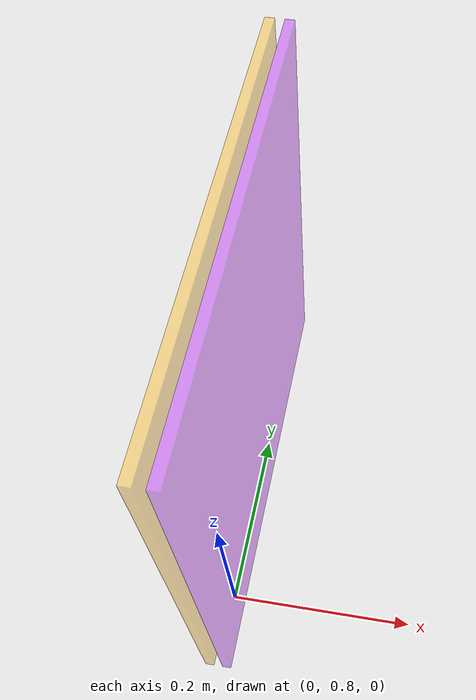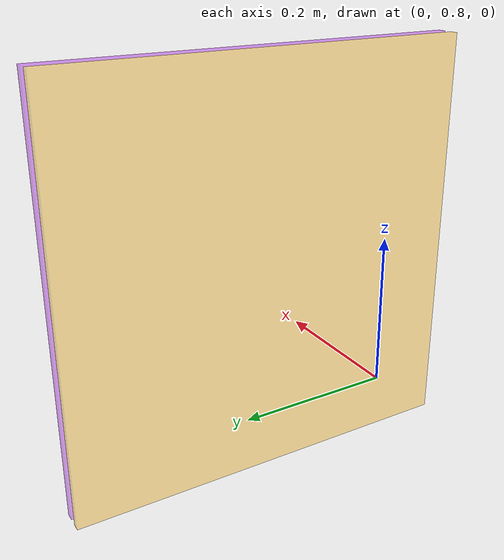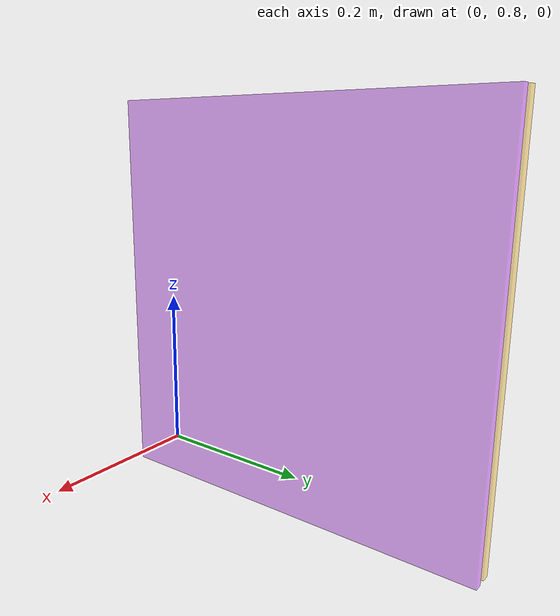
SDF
<sdf version="1.7"><model name="bottom_front"><static>true</static><link name="aoi_plane"><pose>-0.00020367320369517786 0.9819999792586128 0.2 3.14159 0 1.571</pose><visual name="front_face"><geometry><box><size>0.5 0.01 0.5</size></box></geometry><material><ambient>0.7 0.0 1.0 0.4</ambient><diffuse>0.7 0.0 1.0 0.4</diffuse></material></visual><visual name="back_face"><pose>0 -0.02 0 0 0 0</pose><geometry><box><size>0.5 0.01 0.5</size></box></geometry><material><ambient>1.0 0.7 0.0 0.4</ambient><diffuse>1.0 0.7 0.0 0.4</diffuse></material></visual></link></model></sdf>
